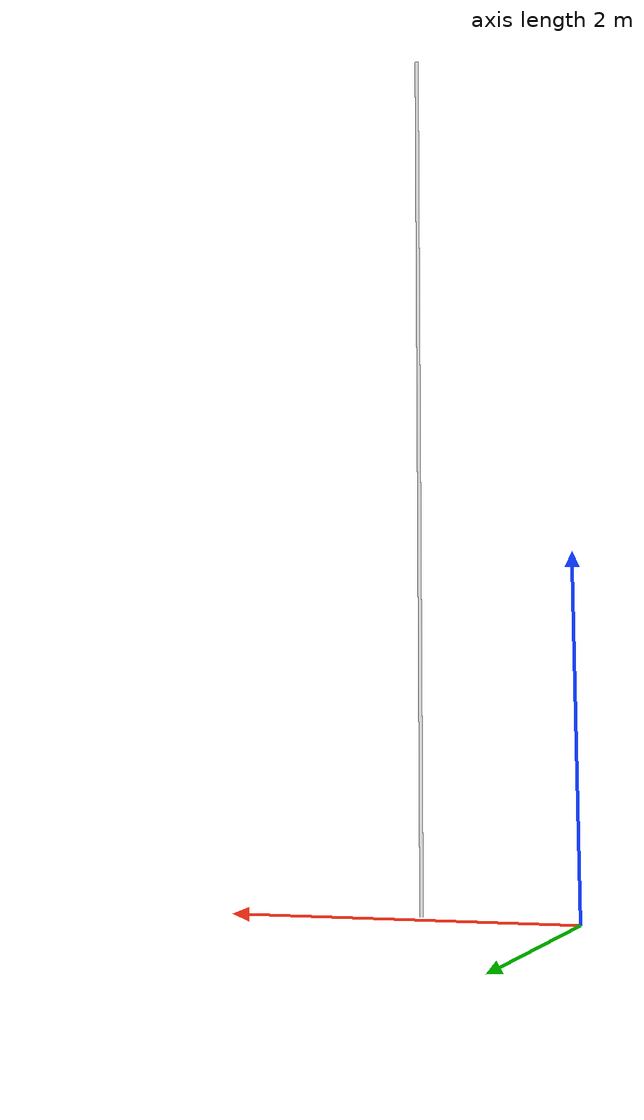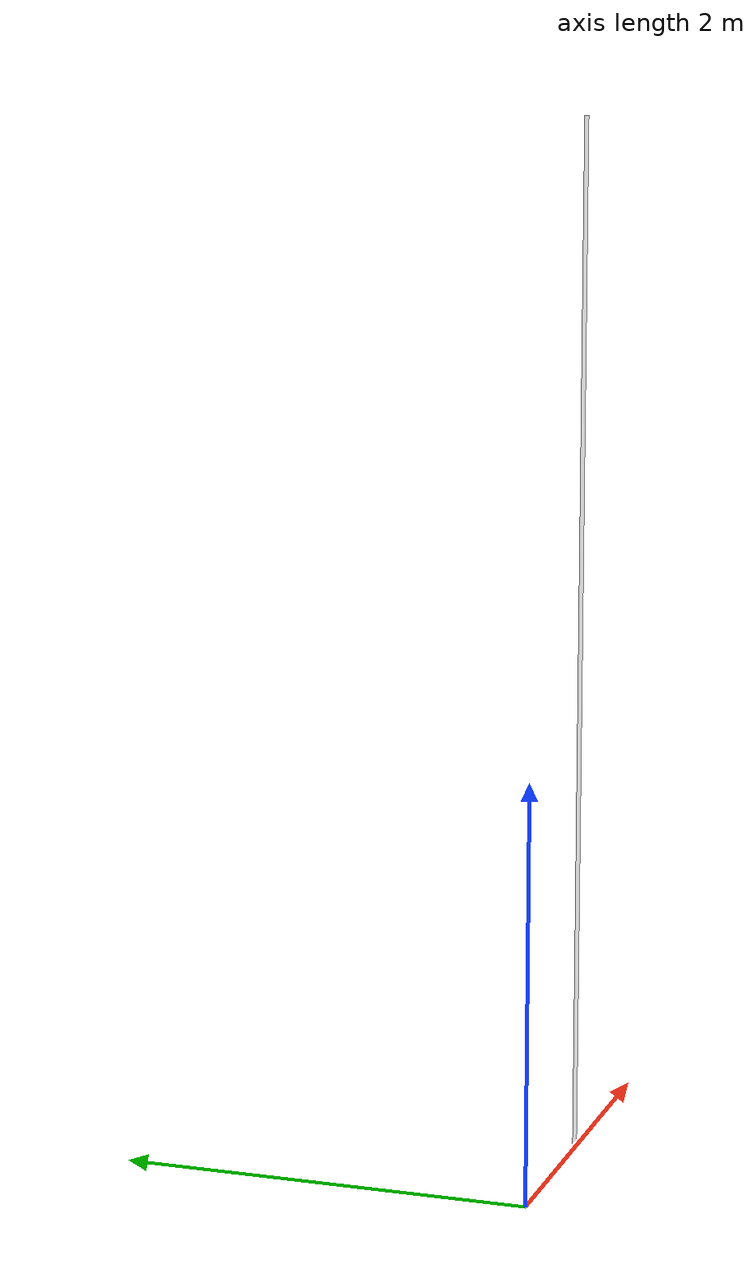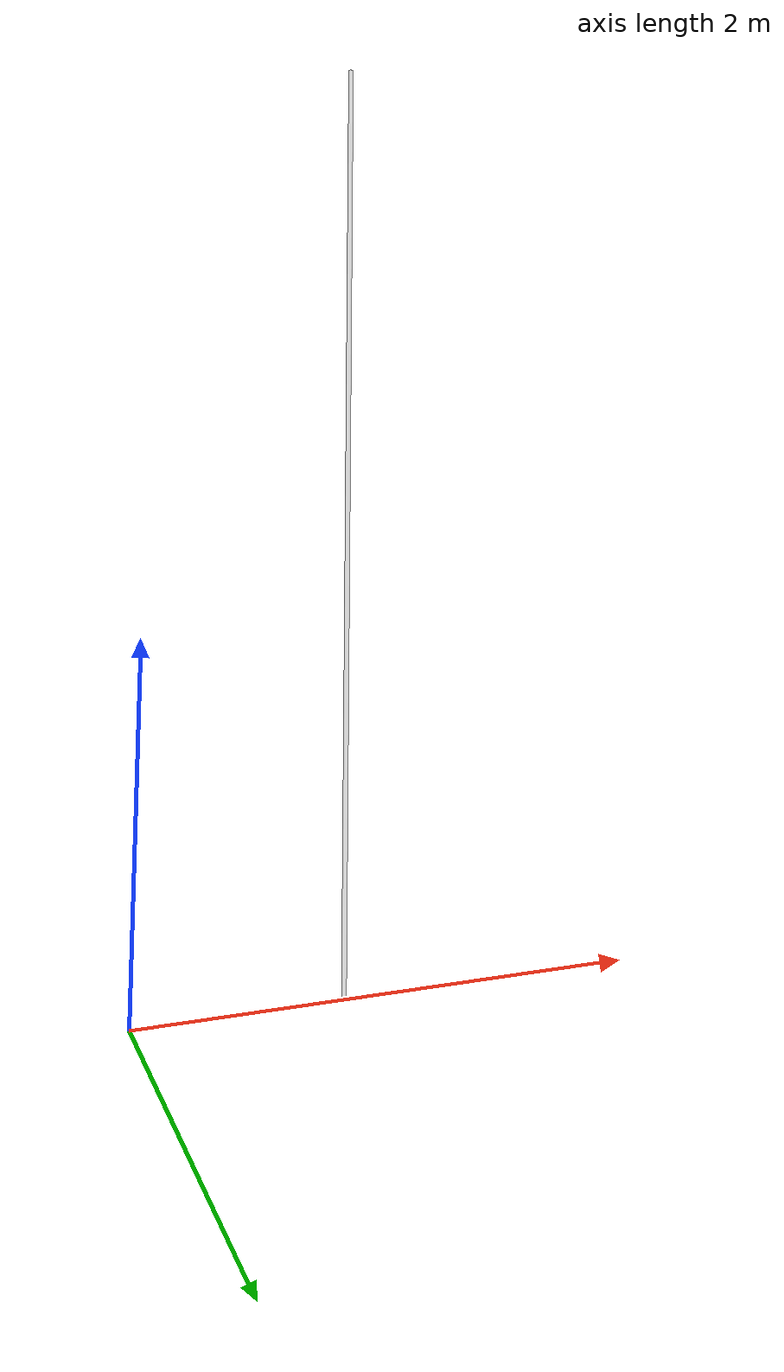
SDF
<?xml version="1.0"?>
<sdf version="1.7">
  <model name="axis">
    <pose>.88 0 2.5 0 0 0</pose>
    <link name="axis">
      <visual name="axis">
        <geometry>
          <cylinder>
            <radius>0.01</radius>
            <length>5</length>
          </cylinder>
        </geometry>
        <material>
          <diffuse>.4 0.4 0.4 .3</diffuse>
        </material>
      </visual>
    </link>
    <static>1</static>
  </model>
</sdf>
